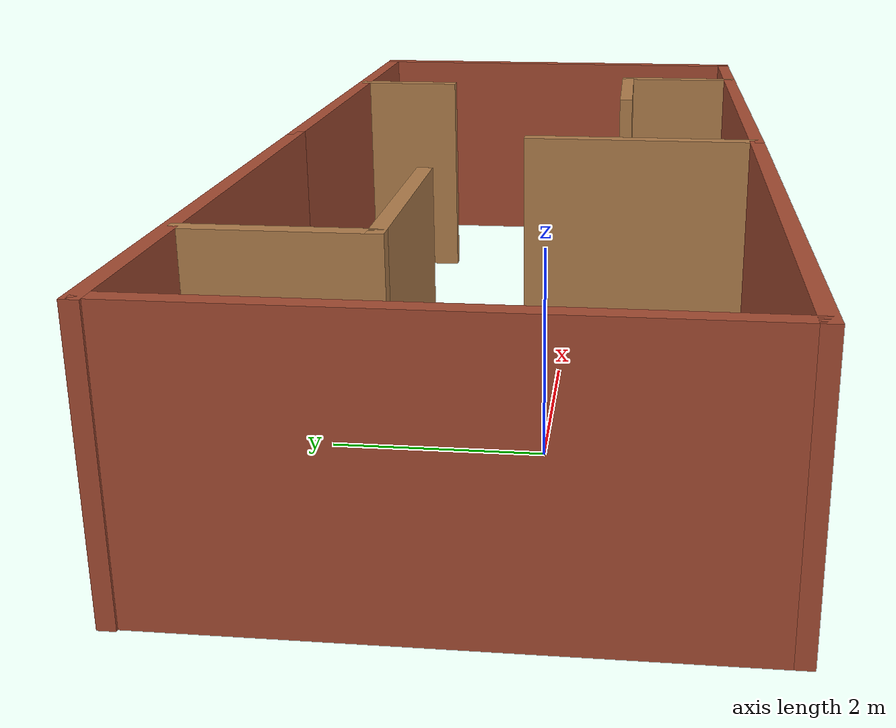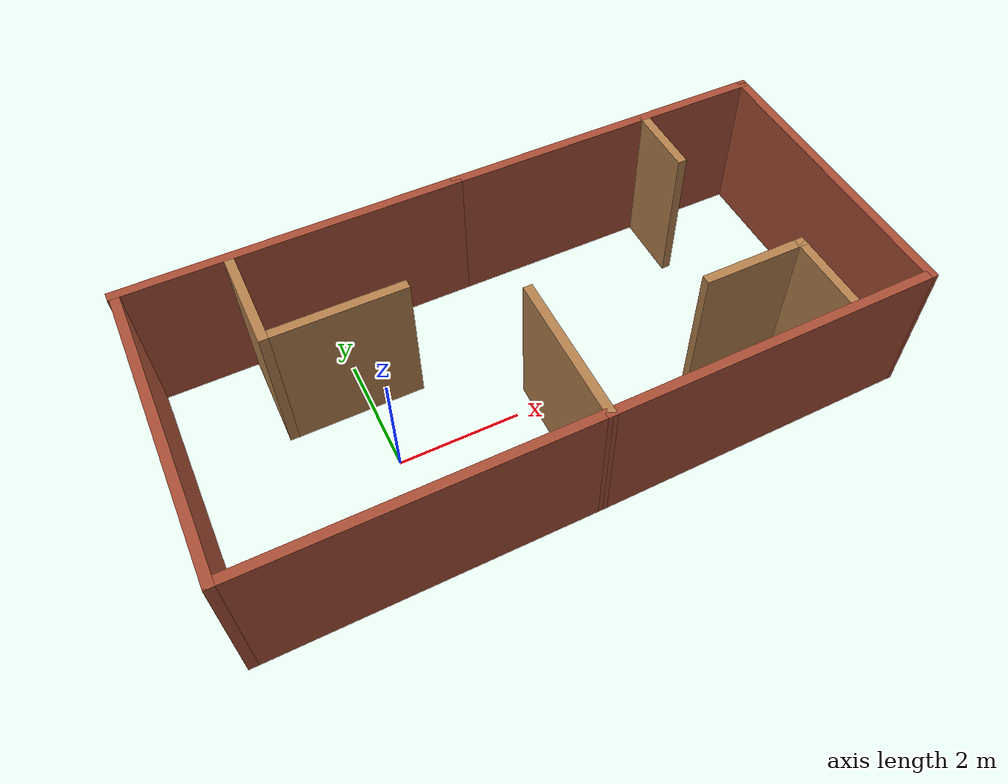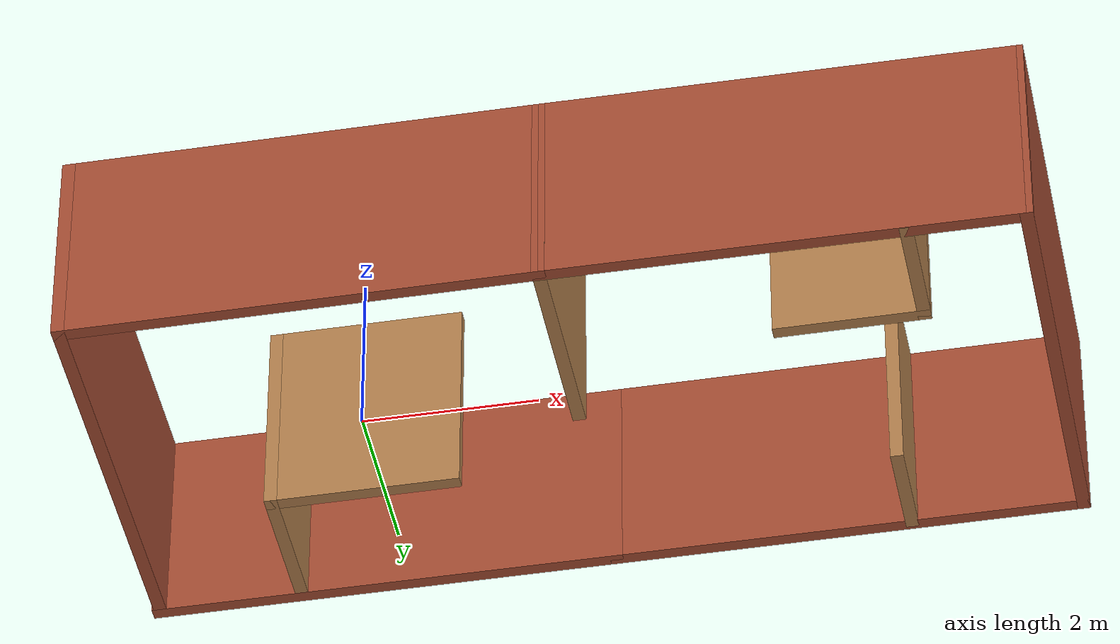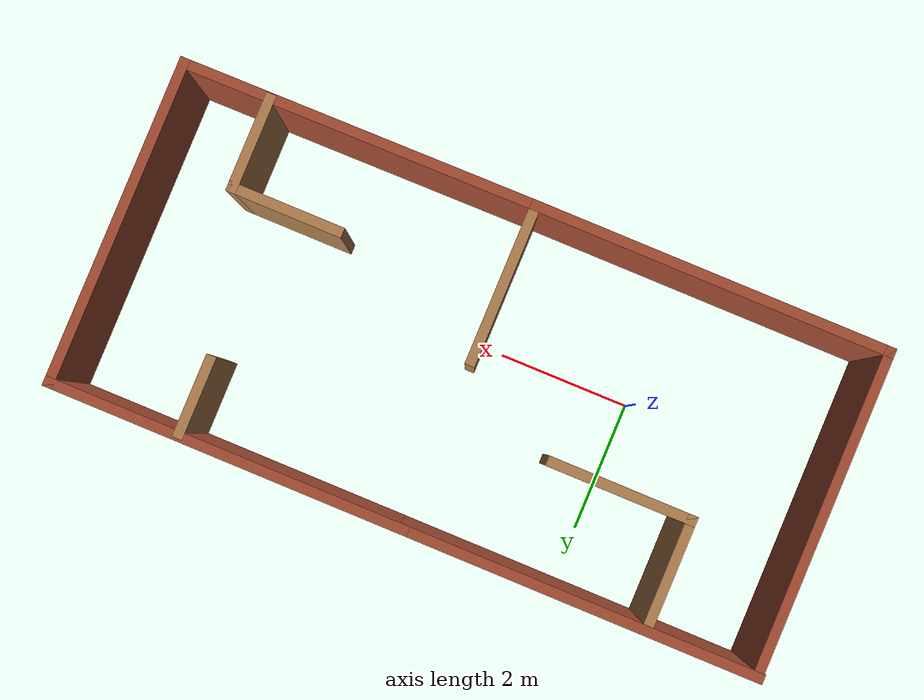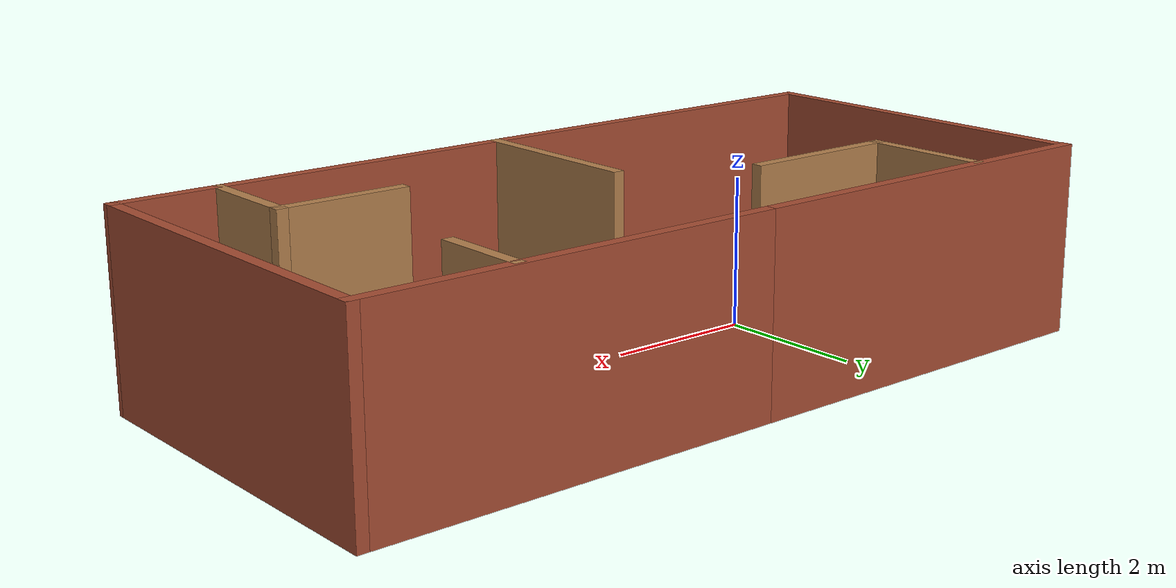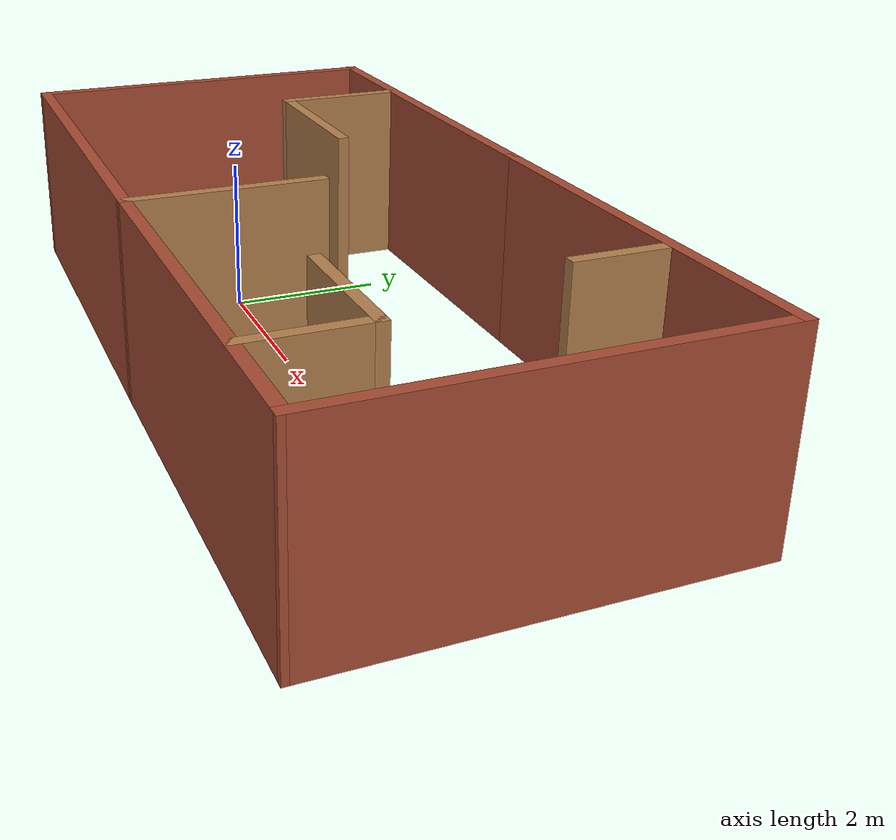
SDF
<?xml version='1.0'?>
<sdf version='1.7'>
  <model name='office.world'>
    <pose>2.35721 0.434566 0 0 -0 0</pose>
    <link name='Wall_0'>
      <collision name='Wall_0_Collision'>
        <geometry>
          <box>
            <size>5.5 0.15 2.5</size>
          </box>
        </geometry>
        <pose>0 0 1.25 0 -0 0</pose>
      </collision>
      <visual name='Wall_0_Visual'>
        <pose>0 0 1.25 0 -0 0</pose>
        <geometry>
          <box>
            <size>5.5 0.15 2.5</size>
          </box>
        </geometry>
        <material>
          <script>
            <uri>file://media/materials/scripts/gazebo.material</uri>
            <name>Gazebo/Bricks</name>
          </script>
          <ambient>1 1 1 1</ambient>
        </material>
        <meta>
          <layer>0</layer>
        </meta>
      </visual>
      <pose>-2.65221 -2.44457 0 0 -0 3.14159</pose>
    </link>
    <link name='Wall_1'>
      <collision name='Wall_1_Collision'>
        <geometry>
          <box>
            <size>5 0.15 2.5</size>
          </box>
        </geometry>
        <pose>0 0 1.25 0 -0 0</pose>
      </collision>
      <visual name='Wall_1_Visual'>
        <pose>0 0 1.25 0 -0 0</pose>
        <geometry>
          <box>
            <size>5 0.15 2.5</size>
          </box>
        </geometry>
        <material>
          <script>
            <uri>file://media/materials/scripts/gazebo.material</uri>
            <name>Gazebo/Bricks</name>
          </script>
          <ambient>1 1 1 1</ambient>
        </material>
        <meta>
          <layer>0</layer>
        </meta>
      </visual>
      <pose>-5.32721 -0.019566 0 0 -0 1.5708</pose>
    </link>
    <link name='Wall_10'>
      <collision name='Wall_10_Collision'>
        <geometry>
          <box>
            <size>1.75 0.15 2.5</size>
          </box>
        </geometry>
        <pose>0 0 1.25 0 -0 0</pose>
      </collision>
      <visual name='Wall_10_Visual'>
        <pose>0 0 1.25 0 -0 0</pose>
        <geometry>
          <box>
            <size>1.75 0.15 2.5</size>
          </box>
        </geometry>
        <material>
          <script>
            <uri>file://media/materials/scripts/gazebo.material</uri>
            <name>Gazebo/Wood</name>
          </script>
          <ambient>1 1 1 1</ambient>
        </material>
        <meta>
          <layer>0</layer>
        </meta>
      </visual>
      <pose>-3.66095 1.58478 0 0 -0 -1.5708</pose>
    </link>
    <link name='Wall_11'>
      <collision name='Wall_11_Collision'>
        <geometry>
          <box>
            <size>2.25 0.15 2.5</size>
          </box>
        </geometry>
        <pose>0 0 1.25 0 -0 0</pose>
      </collision>
      <visual name='Wall_11_Visual'>
        <pose>0 0 1.25 0 -0 0</pose>
        <geometry>
          <box>
            <size>2.25 0.15 2.5</size>
          </box>
        </geometry>
        <material>
          <script>
            <uri>file://media/materials/scripts/gazebo.material</uri>
            <name>Gazebo/Wood</name>
          </script>
          <ambient>1 1 1 1</ambient>
        </material>
        <meta>
          <layer>0</layer>
        </meta>
      </visual>
      <pose>-2.61095 0.784782 0 0 -0 0</pose>
    </link>
    <link name='Wall_13'>
      <collision name='Wall_13_Collision'>
        <geometry>
          <box>
            <size>2.5 0.15 2.5</size>
          </box>
        </geometry>
        <pose>0 0 1.25 0 -0 0</pose>
      </collision>
      <visual name='Wall_13_Visual'>
        <pose>0 0 1.25 0 -0 0</pose>
        <geometry>
          <box>
            <size>2.5 0.15 2.5</size>
          </box>
        </geometry>
        <material>
          <script>
            <uri>file://media/materials/scripts/gazebo.material</uri>
            <name>Gazebo/Wood</name>
          </script>
          <ambient>1 1 1 1</ambient>
        </material>
        <meta>
          <layer>0</layer>
        </meta>
      </visual>
      <pose>0.022789 -1.26957 0 0 -0 1.5708</pose>
    </link>
    <link name='Wall_15'>
      <collision name='Wall_15_Collision'>
        <geometry>
          <box>
            <size>1.25 0.15 2.5</size>
          </box>
        </geometry>
        <pose>0 0 1.25 0 -0 0</pose>
      </collision>
      <visual name='Wall_15_Visual'>
        <pose>0 0 1.25 0 -0 0</pose>
        <geometry>
          <box>
            <size>1.25 0.15 2.5</size>
          </box>
        </geometry>
        <material>
          <script>
            <uri>file://media/materials/scripts/gazebo.material</uri>
            <name>Gazebo/Wood</name>
          </script>
          <ambient>1 1 1 1</ambient>
        </material>
        <meta>
          <layer>0</layer>
        </meta>
      </visual>
      <pose>3.39892 1.85489 0 0 -0 -1.5708</pose>
    </link>
    <link name='Wall_17'>
      <collision name='Wall_17_Collision'>
        <geometry>
          <box>
            <size>1.5 0.15 2.5</size>
          </box>
        </geometry>
        <pose>0 0 1.25 0 -0 0</pose>
      </collision>
      <visual name='Wall_17_Visual'>
        <pose>0 0 1.25 0 -0 0</pose>
        <geometry>
          <box>
            <size>1.5 0.15 2.5</size>
          </box>
        </geometry>
        <material>
          <script>
            <uri>file://media/materials/scripts/gazebo.material</uri>
            <name>Gazebo/Wood</name>
          </script>
          <ambient>1 1 1 1</ambient>
        </material>
        <meta>
          <layer>0</layer>
        </meta>
      </visual>
      <pose>4.04255 -1.72725 0 0 -0 1.5708</pose>
    </link>
    <link name='Wall_18'>
      <collision name='Wall_18_Collision'>
        <geometry>
          <box>
            <size>1.75 0.15 2.5</size>
          </box>
        </geometry>
        <pose>0 0 1.25 0 -0 0</pose>
      </collision>
      <visual name='Wall_18_Visual'>
        <pose>0 0 1.25 0 -0 0</pose>
        <geometry>
          <box>
            <size>1.75 0.15 2.5</size>
          </box>
        </geometry>
        <material>
          <script>
            <uri>file://media/materials/scripts/gazebo.material</uri>
            <name>Gazebo/Wood</name>
          </script>
          <ambient>1 1 1 1</ambient>
        </material>
        <meta>
          <layer>0</layer>
        </meta>
      </visual>
      <pose>3.24255 -1.05225 0 0 -0 3.14159</pose>
    </link>
    <link name='Wall_3'>
      <collision name='Wall_3_Collision'>
        <geometry>
          <box>
            <size>5.5 0.15 2.5</size>
          </box>
        </geometry>
        <pose>0 0 1.25 0 -0 0</pose>
      </collision>
      <visual name='Wall_3_Visual'>
        <pose>0 0 1.25 0 -0 0</pose>
        <geometry>
          <box>
            <size>5.5 0.15 2.5</size>
          </box>
        </geometry>
        <material>
          <script>
            <uri>file://media/materials/scripts/gazebo.material</uri>
            <name>Gazebo/Bricks</name>
          </script>
          <ambient>1 1 1 1</ambient>
        </material>
        <meta>
          <layer>0</layer>
        </meta>
      </visual>
      <pose>-2.67528 2.44512 0 0 -0 3.14159</pose>
    </link>
    <link name='Wall_6'>
      <collision name='Wall_6_Collision'>
        <geometry>
          <box>
            <size>5.5 0.15 2.5</size>
          </box>
        </geometry>
        <pose>0 0 1.25 0 -0 0</pose>
      </collision>
      <visual name='Wall_6_Visual'>
        <pose>0 0 1.25 0 -0 0</pose>
        <geometry>
          <box>
            <size>5.5 0.15 2.5</size>
          </box>
        </geometry>
        <material>
          <script>
            <uri>file://media/materials/scripts/gazebo.material</uri>
            <name>Gazebo/Bricks</name>
          </script>
          <ambient>1 1 1 1</ambient>
        </material>
        <meta>
          <layer>0</layer>
        </meta>
      </visual>
      <pose>2.67472 2.44512 0 0 -0 0</pose>
    </link>
    <link name='Wall_7'>
      <collision name='Wall_7_Collision'>
        <geometry>
          <box>
            <size>5 0.15 2.5</size>
          </box>
        </geometry>
        <pose>0 0 1.25 0 -0 0</pose>
      </collision>
      <visual name='Wall_7_Visual'>
        <pose>0 0 1.25 0 -0 0</pose>
        <geometry>
          <box>
            <size>5 0.15 2.5</size>
          </box>
        </geometry>
        <material>
          <script>
            <uri>file://media/materials/scripts/gazebo.material</uri>
            <name>Gazebo/Bricks</name>
          </script>
          <ambient>1 1 1 1</ambient>
        </material>
        <meta>
          <layer>0</layer>
        </meta>
      </visual>
      <pose>5.34972 0.020122 0 0 -0 -1.5708</pose>
    </link>
    <link name='Wall_8'>
      <collision name='Wall_8_Collision'>
        <geometry>
          <box>
            <size>5.47708 0.15 2.5</size>
          </box>
        </geometry>
        <pose>0 0 1.25 0 -0 0</pose>
      </collision>
      <visual name='Wall_8_Visual'>
        <pose>0 0 1.25 0 -0 0</pose>
        <geometry>
          <box>
            <size>5.47708 0.15 2.5</size>
          </box>
        </geometry>
        <material>
          <script>
            <uri>file://media/materials/scripts/gazebo.material</uri>
            <name>Gazebo/Bricks</name>
          </script>
          <ambient>1 1 1 1</ambient>
        </material>
        <meta>
          <layer>0</layer>
        </meta>
      </visual>
      <pose>2.68626 -2.42472 0 0 -0 -3.13414</pose>
    </link>
    <static>1</static>
  </model>
</sdf>
